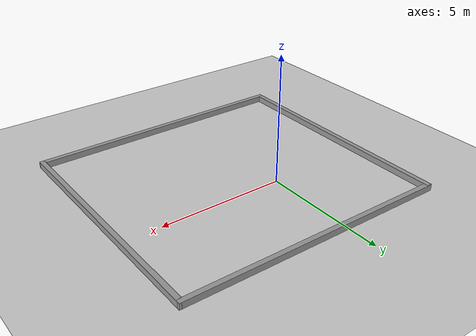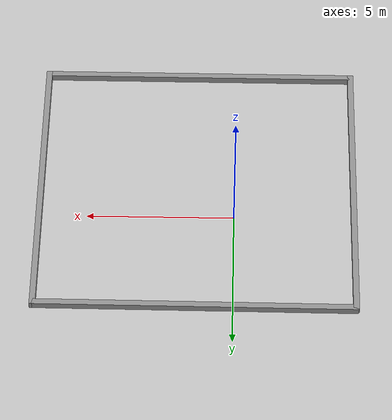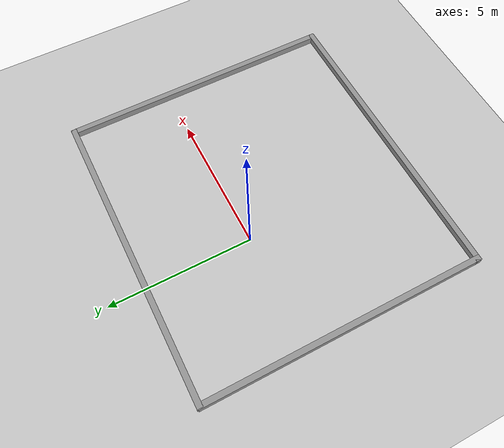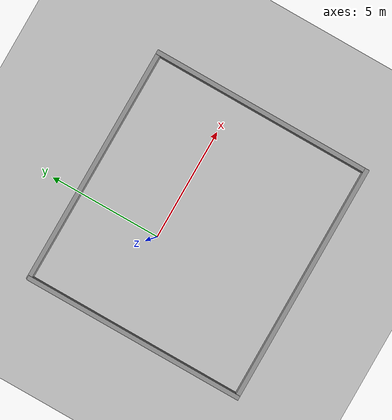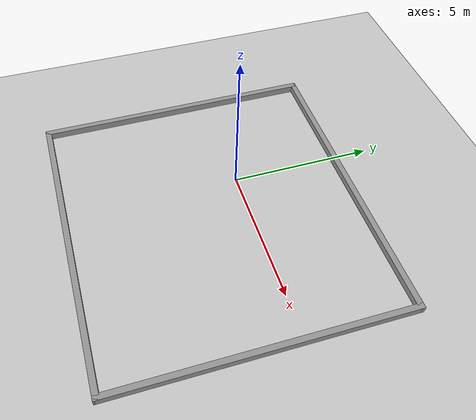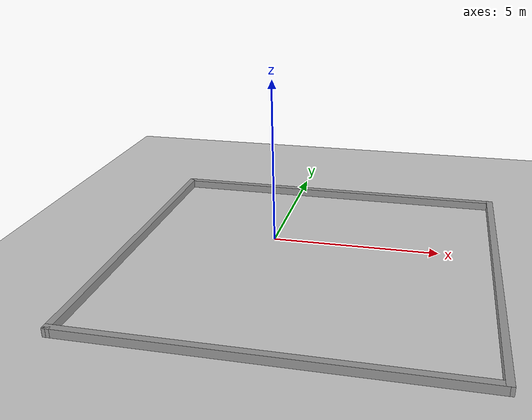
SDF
<sdf version="1.4">
 <world name="default">
  <include><uri>model://ground_plane</uri></include>
  <include><uri>model://sun</uri></include>
  <include><uri>model://map3</uri><name>map</name><pose>5.695124 1.411139 0 0 -0 0</pose></include>
  <include><uri>model://asphalt_plane</uri><name>asphalt</name></include>
 </world>
</sdf>

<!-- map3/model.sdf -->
<sdf version='1.4'>
  <model name='map3'>
    <link name='Wall_0'>
      <collision name='Wall_0_Collision'>
        <geometry>
          <box>
            <size>10 0.2 0.25</size>
          </box>
        </geometry>
        <pose>0 0 0.125 0 -0 0</pose>
      </collision>
      <visual name='Wall_0_Visual'>
        <pose>0 0 0.125 0 -0 0</pose>
        <geometry>
          <box>
            <size>10 0.2 0.25</size>
          </box>
        </geometry>
        <material>
          <script>
            <uri>file://media/materials/scripts/gazebo.material</uri>
            <name>Gazebo/Grey</name>
          </script>
        </material>
      </visual>
      <velocity_decay>
        <linear>0</linear>
        <angular>0</angular>
      </velocity_decay>
      <pose>-9.76099 -2.63039 0 0 0 -1.57082</pose>
    </link>
    <link name='Wall_1'>
      <collision name='Wall_1_Collision'>
        <geometry>
          <box>
            <size>10.8783 0.2 0.25</size>
          </box>
        </geometry>
        <pose>0 0 0.125 0 -0 0</pose>
      </collision>
      <visual name='Wall_1_Visual'>
        <pose>0 0 0.125 0 -0 0</pose>
        <geometry>
          <box>
            <size>10.8783 0.2 0.25</size>
          </box>
        </geometry>
        <material>
          <script>
            <uri>file://media/materials/scripts/gazebo.material</uri>
            <name>Gazebo/Grey</name>
          </script>
        </material>
      </visual>
      <velocity_decay>
        <linear>0</linear>
        <angular>0</angular>
      </velocity_decay>
      <pose>-4.42194 -7.52874 0 0 -0 0.000309</pose>
    </link>
    <link name='Wall_2'>
      <collision name='Wall_2_Collision'>
        <geometry>
          <box>
            <size>10 0.2 0.25</size>
          </box>
        </geometry>
        <pose>0 0 0.125 0 -0 0</pose>
      </collision>
      <visual name='Wall_2_Visual'>
        <pose>0 0 0.125 0 -0 0</pose>
        <geometry>
          <box>
            <size>10 0.2 0.25</size>
          </box>
        </geometry>
        <material>
          <script>
            <uri>file://media/materials/scripts/gazebo.material</uri>
            <name>Gazebo/Grey</name>
          </script>
        </material>
      </visual>
      <velocity_decay>
        <linear>0</linear>
        <angular>0</angular>
      </velocity_decay>
      <pose>0.917206 -2.62709 0 0 -0 1.5708</pose>
    </link>
    <link name='Wall_3'>
      <collision name='Wall_3_Collision'>
        <geometry>
          <box>
            <size>10.8513 0.2 0.25</size>
          </box>
        </geometry>
        <pose>0 0 0.125 0 -0 0</pose>
      </collision>
      <visual name='Wall_3_Visual'>
        <pose>0 0 0.125 0 -0 0</pose>
        <geometry>
          <box>
            <size>10.8513 0.2 0.25</size>
          </box>
        </geometry>
        <material>
          <script>
            <uri>file://media/materials/scripts/gazebo.material</uri>
            <name>Gazebo/Grey</name>
          </script>
        </material>
      </visual>
      <velocity_decay>
        <linear>0</linear>
        <angular>0</angular>
      </velocity_decay>
      <pose>-4.4084 2.28946 0 0 -0 3.13849</pose>
    </link>
    <static>1</static>
  </model>
</sdf>
